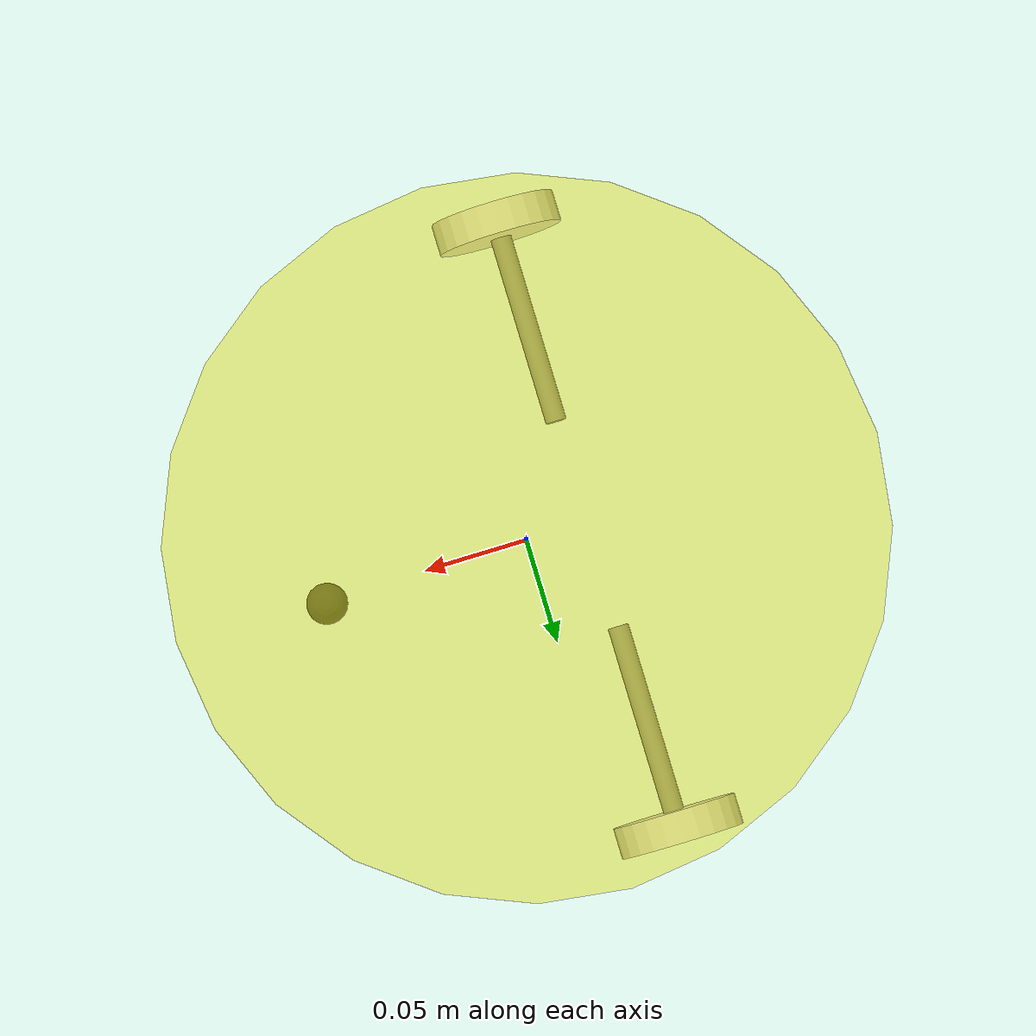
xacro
<robot name="urdf_learning" xmlns:xacro="http://ros.org/wiki/xacro">

    <!-- 标签定义 -->

    <!-- 属性 -->
    <xacro:property name="PI" value="3.141592653589"/>
    <xacro:property name="base_height" value="0.08"/>
    <xacro:property name="base_radius" value="0.17"/>
    <xacro:property name="caster_radius" value="0.01"/>
    <xacro:property name="motor_height" value="0.1"/>
    <xacro:property name="motor_radius" value="0.005"/>
    <xacro:property name="wheel_height" value="0.015"/>
    <xacro:property name="wheel_radius" value="0.03"/>

    <xacro:property name="base_color" value="0.9 0.9 0.1 0.5"/>
    <xacro:property name="caster_color" value="0.1 0.1 0.1 1"/>
    <xacro:property name="motor_color" value="0.5 0.5 0.5 1"/>
    <xacro:property name="wheel_color" value="0.9 0.9 0.9 1"/>

    <xacro:property name="base_mass" value="1"/>
    <xacro:property name="caster_mass" value="0.05"/>
    <xacro:property name="motor_mass" value="0.1"/>
    <xacro:property name="wheel_mass" value="0.05"/>

    <xacro:property name="base_origin_xyz" value="0 0 0"/>
    <xacro:property name="base_origin_rpy" value="0 0 0"/>
    <xacro:property name="caster_origin_xyz" value="0 0 0"/>
    <xacro:property name="caster_origin_rpy" value="0 0 0"/>
    <xacro:property name="motor_origin_y" value="0.001"/>
    <xacro:property name="motor_origin_rpy" value="${PI/2} 0 0"/>
    <xacro:property name="wheel_origin_y" value="0.025"/>
    <xacro:property name="wheel_origin_rpy" value="${PI/2} 0 0"/>

    <xacro:property name="base_to_caster_joint_xyz" value="0.1 0 -0.04"/>
    <xacro:property name="base_to_caster_joint_rpy" value="0 0 0"/>

    <xacro:property name="base_to_motor_joint_y" value="0.1"/>
    <xacro:property name="base_to_motor_joint_rpy" value="0 0 0"/>

    <xacro:property name="motor_to_wheel_joint_y" value="0.025"/>
    <xacro:property name="motor_to_wheel_joint_rpy" value="0 0 0"/>

    <xacro:property name="wheel_joint_xyz" value="0 0 0"/>
    <xacro:property name="wheel_joint_rpy" value="0 ${PI/2} 0"/>
    <xacro:property name="wheel_joint_axis" value="0 1 0"/>

    <xacro:property name="motor_joint_xyz" value="0 0 0"/>
    <xacro:property name="motor_joint_rpy" value="0 ${PI/2} 0"/>
    <xacro:property name="motor_joint_axis" value="0 1 0"/>

    <!-- Macro for inertia matrix -->
    <xacro:macro name="sphere_inertial_matrix" params="m r">
        <inertial>
            <mass value="${m}" />
            <inertia ixx="${2*m*r*r/5}" ixy="0" ixz="0"
                iyy="${2*m*r*r/5}" iyz="0"
                izz="${2*m*r*r/5}" />
        </inertial>
    </xacro:macro>

    <xacro:macro name="cylinder_inertial_matrix" params="m r h">
        <inertial>
            <mass value="${m}" />
            <inertia ixx="${m*(3*r*r+h*h)/12}" ixy = "0" ixz = "0"
                iyy="${m*(3*r*r+h*h)/12}" iyz = "0"
                izz="${m*r*r/2}" />
        </inertial>
    </xacro:macro>

    <xacro:macro name="Box_inertial_matrix" params="m l w h">
       <inertial>
               <mass value="${m}" />
               <inertia ixx="${m*(h*h + l*l)/12}" ixy = "0" ixz = "0"
                   iyy="${m*(w*w + l*l)/12}" iyz= "0"
                   izz="${m*(w*w + h*h)/12}" />
       </inertial>
   </xacro:macro>

    <xacro:macro name="base_link">
        <link name="base_link">
            <visual>
                <origin xyz="${base_origin_xyz}" rpy="${base_origin_rpy}"/>
                <geometry>
                    <cylinder length="${base_height}" radius="${base_radius}"/>
                </geometry>
                <material name="blue">
                    <color rgba="${base_color}"/>
                </material>
            </visual>
            <collision>
                <origin xyz="${base_origin_xyz}" rpy="${base_origin_rpy}"/>
                <geometry>
                    <cylinder length="${base_height}" radius="${base_radius}"/>
                </geometry>
            </collision>
            <xacro:cylinder_inertial_matrix m="${base_mass}" r="${base_radius}" h="${base_height}"/>

        </link>
        <gazebo reference="base_link">
            <material>Gazebo/Blue</material>
        </gazebo>
    </xacro:macro>
    <xacro:macro name="caster_link">
        <link name="caster_link">
            <visual>
                <origin xyz="${caster_origin_xyz}" rpy="${caster_origin_rpy}"/>
                <geometry>
                    <sphere radius="${caster_radius}"/>
                </geometry>
                <material name="black">
                    <color rgba="${caster_color}"/>
                </material>
            </visual>
            <collision>
                <origin xyz="${caster_origin_xyz}" rpy="${caster_origin_rpy}"/>
                <geometry>
                    <sphere radius="${caster_radius}"/>
                </geometry>
            </collision>
            <xacro:sphere_inertial_matrix m="${caster_mass}" r="${caster_radius}"/>

        </link>
        <gazebo reference="caster_link">
            <material>Gazebo/Black</material>
        </gazebo>
</xacro:macro>
    <xacro:macro name="motor_link" params="name flag">
        <link name="${name}_motor_link">
            <visual>
                <origin xyz="0 ${flag*motor_origin_y} 0" rpy="${motor_origin_rpy}"/>
                <geometry>
                    <cylinder length="${motor_height}" radius="${motor_radius}"/>
                </geometry>
                <material name="red">
                    <color rgba="${motor_color}"/>
                </material>
            </visual>
            <collision>
                <origin xyz="0 ${flag*motor_origin_y} 0" rpy="${motor_origin_rpy}"/>
                <geometry>
                    <cylinder length="${motor_height}" radius="${motor_radius}"/>
                </geometry>
            </collision>
            <xacro:cylinder_inertial_matrix m="${motor_mass}" r="${motor_radius}" h="${motor_height}"/>

        </link>
        <gazebo reference="${name}_motor_link">
            <material>Gazebo/Red</material>
        </gazebo>
    </xacro:macro>
    <xacro:macro name="wheel_link" params="name flag">
        <link name="${name}_wheel_link">
            <visual>
                <origin xyz="0 ${flag*wheel_origin_y} 0" rpy="${wheel_origin_rpy}"/>
                <geometry>
                    <cylinder length="${wheel_height}" radius="${wheel_radius}"/>
                </geometry>
                <material name="green">
                    <color rgba="${wheel_color}"/>
                </material>
            </visual>
            <collision>
                <origin xyz="0 ${flag*wheel_origin_y} 0" rpy="${wheel_origin_rpy}"/>
                <geometry>
                    <cylinder length="${wheel_height}" radius="${wheel_radius}"/>
                </geometry>
            </collision>
            <xacro:cylinder_inertial_matrix m="${wheel_mass}" r="${wheel_radius}" h="${wheel_height}"/>

        </link>
        <gazebo reference="${name}_wheel_link">
            <material>Gazebo/Green</material>
        </gazebo>
    </xacro:macro>

    <!-- 关节 -->
    <xacro:macro name="caster_joint" >
        <joint name="base_to_caster_joint" type="continuous">
            <parent link="base_link"/>
            <child link="caster_link"/>
            <origin xyz="${base_to_caster_joint_xyz}" rpy="${base_to_caster_joint_rpy}"/>
        </joint>
    </xacro:macro>
    <xacro:macro name="motor_joint" params="name flag">
        <joint name="base_to_${name}_motor_joint" type="fixed">
            <parent link="base_link"/>
            <child link="${name}_motor_link"/>
            <origin xyz="-0.03 ${flag*base_to_motor_joint_y} -0.02" rpy="${base_to_motor_joint_rpy}"/>
            <axis xyz="${motor_joint_axis}"/>
        </joint>
    </xacro:macro>
    <xacro:macro name="wheel_joint" params="name flag">
        <joint name="motor_to_${name}_wheel_joint" type="continuous">
            <parent link="${name}_motor_link"/>
            <child link="${name}_wheel_link"/>
            <origin xyz="0 ${flag*motor_to_wheel_joint_y} 0" rpy="${motor_to_wheel_joint_rpy}"/>
            <axis xyz="${wheel_joint_axis}"/>
        </joint>
    </xacro:macro>

    <!-- 实例化 -->
    <xacro:base_link/>
    <xacro:caster_link/>
    <xacro:motor_link name="lf" flag="1"/>
    <xacro:motor_link name="rf" flag="-1"/>
    <xacro:wheel_link name="lf" flag="1"/>
    <xacro:wheel_link name="rf" flag="-1"/>
    <xacro:caster_joint/>
    <xacro:motor_joint name="lf" flag="1"/>
    <xacro:motor_joint name="rf" flag="-1"/>
    <xacro:wheel_joint name="lf" flag="1"/>
    <xacro:wheel_joint name="rf" flag="-1"/>

</robot>
